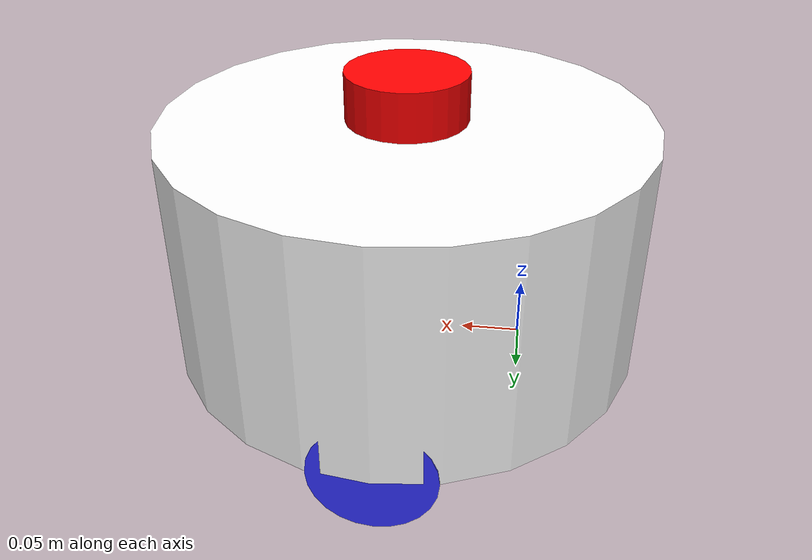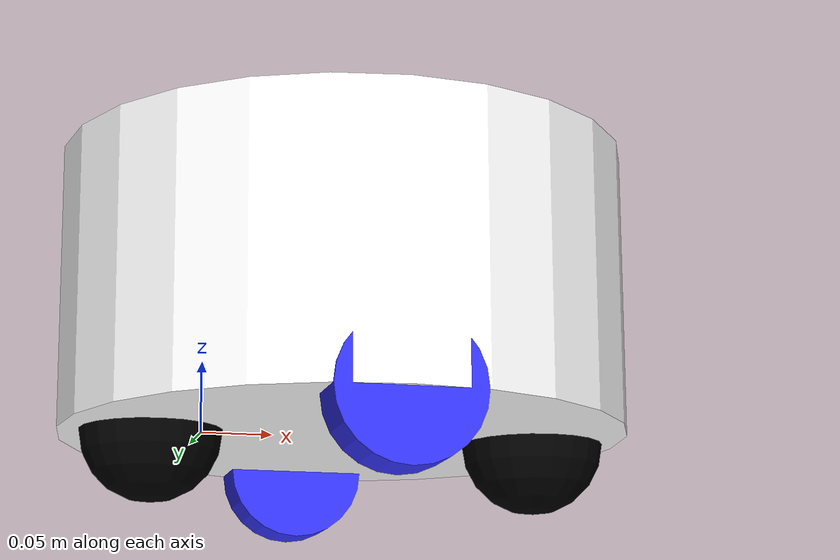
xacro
<?xml version="1.0"?>
<robot xmlns:xacro="http://www.ros.org/wiki/xacro"  name="robot">

    <xacro:include filename="robot_core.xacro"/>

    <xacro:arg name="use_ros2_control" default="true"/>

    <xacro:if value="$(arg use_ros2_control)">

        <xacro:include filename="ros2_control.xacro"/>

    </xacro:if>

    <xacro:unless value="$(arg use_ros2_control)">

        <xacro:include filename="gazebo_control.xacro"/>

    </xacro:unless>

    <xacro:include filename="lidar.xacro"/>

</robot>

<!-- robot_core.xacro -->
<robot xmlns:xacro="http://www.ros.org/wiki/xacro"  >

    <xacro:include filename="inertial_macros.xacro"/>

    <material name="white">
        <color rgba=" 1 1 1 1"/>
    </material>

    <material name="orange">
        <color rgba=" 1 0.3 0.1 1"/>
    </material>

    <material name="blue">
        <color rgba="0.2 0.2 1 1"/>
    </material>

    <material name="black">
        <color rgba=" 0 0 0 1"/>
    </material>

    <material name="red">
        <color rgba="1 0 0 1"/>
    </material>

    <!-- BASE LINK-->

    <link name="base_link">

    </link>

    <!-- CHASSIS LINK-->

    <joint name="chassis_joint" type="fixed">

        <parent link="base_link"/>
        <child link ="chassis"/>

    </joint>

    <link name="chassis">

        <visual>
            <origin xyz="0.1 0 0.1"/>
            <geometry>

                <cylinder radius="0.2" length="0.2"/>

            </geometry>

            <material name="white"/>
        </visual>

        <collision>
            <origin xyz="0.1 0 0.1"/>
            <geometry>

                <cylinder radius="0.2" length="0.2"/>

            </geometry>

        </collision>
        <xacro:inertial_cylinder_body mass="0.5" radius="0.2" length="0.2">
            <origin xyz="0.15 0 0.075" rpy="0 0 0"/>
        </xacro:inertial_cylinder_body>

    </link>

    <gazebo reference="chassis">

        <material>Gazebo/White</material>

    </gazebo>

    <!-- LEFT WHEEL LINK-->

    <joint name="left_wheel_joint" type="continuous">
        <parent link ="base_link"/>
        <child link="left_wheel"/>
        <origin xyz="0.1 0.175 0" rpy="-${pi/2} 0 0"/>
        <axis xyz="0 0 1"/>

    </joint>

    <link name="left_wheel">
        <visual>
            <geometry>
                <cylinder radius="0.05" length="0.04"/>
            </geometry>
            <material name="blue"/>

        </visual>

        <collision>
            <geometry>
                <sphere radius="0.05" />
            </geometry>
        </collision>

        <xacro:inertial_cylinder mass="0.1" length="0.04" radius="0.05">
            <origin xyz="0 0 0" rpy="0 0 0"/>
        </xacro:inertial_cylinder>

    </link>

    <gazebo reference="left_wheel">

        <material>Gazebo/Blue</material>

    </gazebo>

     <!-- RIGHT WHEEL LINK-->

     <joint name="right_wheel_joint" type="continuous">
        <parent link ="base_link"/>
        <child link="right_wheel"/>
        <origin xyz="0.1 -0.175 0" rpy="${pi/2} 0 0"/>
        <axis xyz="0 0 -1"/>

    </joint>

    <link name="right_wheel">
        <visual>
            <geometry>
                <cylinder radius="0.05" length="0.04"/>
            </geometry>
            <material name="blue"/>

        </visual>

        <collision>
            <geometry>
                <sphere radius="0.05" />
            </geometry>
        </collision>

        <xacro:inertial_cylinder mass="0.1" length="0.04" radius="0.05">
            <origin xyz="0 0 0" rpy="0 0 0"/>
        </xacro:inertial_cylinder>

    </link>

    <gazebo reference="right_wheel">

        <material>Gazebo/Blue</material>

    </gazebo>

    <!-- FRONT CASTER WHEEL LINK-->

    <joint name="front_caster_wheel_joint" type="fixed">
        <parent link="chassis"/>
        <child link="front_caster_wheel"/>
        <origin xyz="0.24 0 0"/>

    </joint>

    <link name="front_caster_wheel">
        <visual>
            <geometry>
                <sphere radius="0.05"/>
            </geometry>
            <material name="black"/>
        </visual>

        <collision>
            <geometry>
                <sphere radius="0.05"/>
            </geometry>
        </collision>

        <xacro:inertial_sphere mass="0.1" radius="0.05">
            <origin xyz="0 0 0" rpy="0 0 0"/>
        </xacro:inertial_sphere>

    </link>

    <gazebo reference="front_caster_wheel">

        <material>Gazebo/Black</material>
        <mu1 value="0.001"/>
        <mu2 value="0.001"/>
    </gazebo>

    <!-- BACK CASTER WHEEL LINK-->

    <joint name="back_caster_wheel_joint" type="fixed">
        <parent link="chassis"/>
        <child link="back_caster_wheel"/>
        <origin xyz="-0.035 0 0"/>

    </joint>

    <link name="back_caster_wheel">
        <visual>
            <geometry>
                <sphere radius="0.05"/>
            </geometry>
            <material name="black"/>
        </visual>

        <collision>
            <geometry>
                <sphere radius="0.05"/>
            </geometry>
        </collision>
    </link>

    <gazebo reference="back_caster_wheel">

        <material>Gazebo/Black</material>
        <mu1 value="0.001"/>
        <mu2 value="0.001"/>
    </gazebo>

</robot>

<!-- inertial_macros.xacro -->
<robot xmlns:xacro="http://www.ros.org/wiki/xacro" >

    <!-- Specify some standard inertial calculations https://en.wikipedia.org/wiki/List_of_moments_of_inertia -->
    <!-- These make use of xacro's mathematical functionality -->

    <xacro:macro name="inertial_sphere" params="mass radius *origin">
        <inertial>
            <xacro:insert_block name="origin"/>
            <mass value="${mass}" />
            <inertia ixx="${(2/5) * mass * (radius*radius)}" ixy="0.0" ixz="0.0"
                    iyy="${(2/5) * mass * (radius*radius)}" iyz="0.0"
                    izz="${(2/5) * mass * (radius*radius)}" />
        </inertial>
    </xacro:macro>

    <xacro:macro name="inertial_box" params="mass x y z *origin">
        <inertial>
            <xacro:insert_block name="origin"/>
            <mass value="${mass}" />
            <inertia ixx="${(1/12) * mass * (y*y+z*z)}" ixy="0.0" ixz="0.0"
                    iyy="${(1/12) * mass * (x*x+z*z)}" iyz="0.0"
                    izz="${(1/12) * mass * (x*x+y*y)}" />
        </inertial>
    </xacro:macro>

    <xacro:macro name="inertial_cylinder_body" params="mass radius length *origin">
    <inertial>
        <xacro:insert_block name="origin"/>
        <mass value="${mass}" />
        <inertia ixx="${(1/12) * mass * (3 * radius * radius + length * length)}" ixy="0.0" ixz="0.0"
                 iyy="${(1/2) * mass * radius * radius}" iyz="0.0"
                 izz="${(1/12) * mass * (radius * radius + length * length)}" />
    </inertial>
</xacro:macro>

    <xacro:macro name="inertial_cylinder" params="mass length radius *origin">
        <inertial>
            <xacro:insert_block name="origin"/>
            <mass value="${mass}" />
            <inertia ixx="${(1/12) * mass * (3*radius*radius + length*length)}" ixy="0.0" ixz="0.0"
                    iyy="${(1/12) * mass * (3*radius*radius + length*length)}" iyz="0.0"
                    izz="${(1/2) * mass * (radius*radius)}" />
        </inertial>
    </xacro:macro>

</robot>

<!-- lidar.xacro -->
<robot xmlns:xacro="http://www.ros.org/wiki/xacro" >

    <joint name="laser_joint" type="fixed">
        <parent link="chassis"/>
        <child link="laser_frame"/>
        <origin xyz="0.1 0 0.22" rpy="0 0 0"/>
    </joint>

    <link name="laser_frame">
        <visual>
            <geometry>
                <cylinder radius="0.05" length="0.04"/>
            </geometry>
            <material name="red"/>
        </visual>
        <collision>
            <geometry>
                <cylinder radius="0.05" length="0.04"/>
            </geometry>
        </collision>
        <xacro:inertial_cylinder mass="0.1" length="0.04" radius="0.05">
            <origin xyz="0 0 0" rpy="0 0 0"/>
        </xacro:inertial_cylinder>
    </link>

    <gazebo reference="laser_frame">
        <material>Gazebo/Red</material>

        <sensor name="laser" type="ray">
            <pose> 0 0 0 0 0 0 </pose>
            <visualize>true</visualize>
            <update_rate>10</update_rate>
            <ray>
                <scan>
                    <horizontal>
                        <samples>360</samples>
                        <min_angle>-3.14</min_angle>
                        <max_angle>3.14</max_angle>
                    </horizontal>
                </scan>
                <range>
                    <min>0.3</min>
                    <max>12</max>
                </range>
            </ray>
            <plugin name="laser_controller" filename="libgazebo_ros_ray_sensor.so">
                <ros>
                    <argument>~/out:=scan</argument>
                </ros>
                <output_type>sensor_msgs/LaserScan</output_type>
                <frame_name>laser_frame</frame_name>
            </plugin>
        </sensor>
    </gazebo>

</robot>
